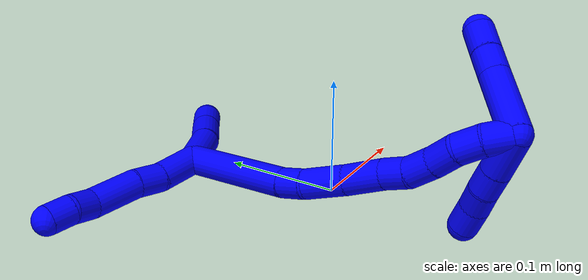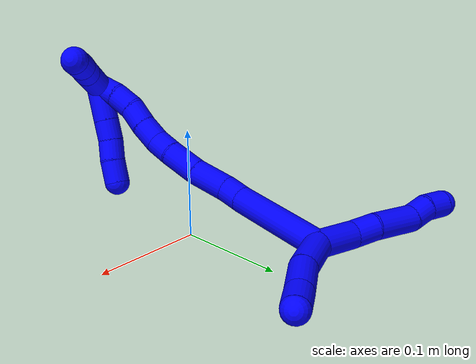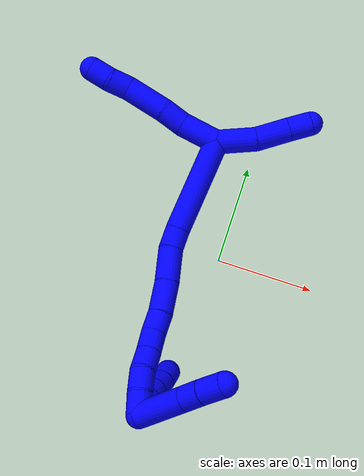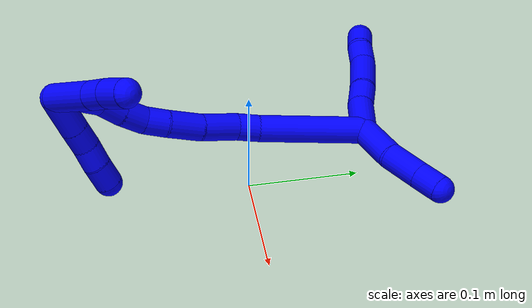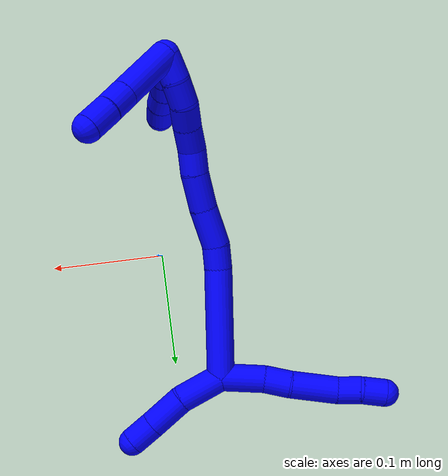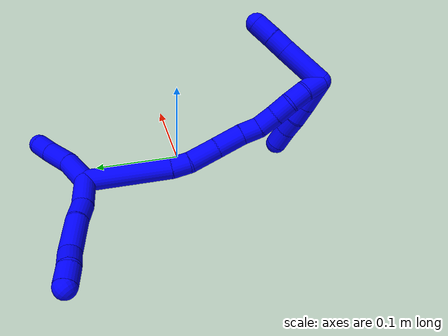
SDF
<sdf version="1.7">
 <world name="default">
  <model name="1">
   <static>0</static>
   <link name="1">
    <collision name="collision-cylinder-e_1_2_8">
     <pose>-0.012426 0.006484 -0.013899 -2.7051 -0.680944 2.02292</pose>
     <geometry><cylinder><radius>0.0125</radius><length>0.039478</length></cylinder></geometry>
     <surface>
      <friction><ode><mu>1.16</mu><mu2>1.16</mu2><slip1>0</slip1><slip2>0</slip2></ode></friction>
      <contact><ode><kp>1e+06</kp><kd>1</kd><max_vel>0</max_vel><min_depth>0.001</min_depth></ode></contact>
     </surface>
    </collision>
    <visual name="visual-cylinder-e_1_2_8">
     <pose>-0.012426 0.006484 -0.013899 -2.7051 -0.680944 2.02292</pose>
     <geometry><cylinder><radius>0.0125</radius><length>0.039478</length></cylinder></geometry>
     <material><ambient>0 0 1 1</ambient></material>
    </visual>
    <collision name="collision-cylinder-e_2_8_9">
     <pose>-0.034166 0.017015 -0.034356 -2.58868 -0.879548 2.05633</pose>
     <geometry><cylinder><radius>0.0125</radius><length>0.024177</length></cylinder></geometry>
     <surface>
      <friction><ode><mu>1.16</mu><mu2>1.16</mu2><slip1>0</slip1><slip2>0</slip2></ode></friction>
      <contact><ode><kp>1e+06</kp><kd>1</kd><max_vel>0</max_vel><min_depth>0.001</min_depth></ode></contact>
     </surface>
    </collision>
    <visual name="visual-cylinder-e_2_8_9">
     <pose>-0.034166 0.017015 -0.034356 -2.58868 -0.879548 2.05633</pose>
     <geometry><cylinder><radius>0.0125</radius><length>0.024177</length></cylinder></geometry>
     <material><ambient>0 0 1 1</ambient></material>
    </visual>
    <collision name="collision-cylinder-e_3_9_10">
     <pose>-0.057711 0.029332 -0.055064 -2.61272 -0.715034 1.88719</pose>
     <geometry><cylinder><radius>0.0125</radius><length>0.043412</length></cylinder></geometry>
     <surface>
      <friction><ode><mu>1.16</mu><mu2>1.16</mu2><slip1>0</slip1><slip2>0</slip2></ode></friction>
      <contact><ode><kp>1e+06</kp><kd>1</kd><max_vel>0</max_vel><min_depth>0.001</min_depth></ode></contact>
     </surface>
    </collision>
    <visual name="visual-cylinder-e_3_9_10">
     <pose>-0.057711 0.029332 -0.055064 -2.61272 -0.715034 1.88719</pose>
     <geometry><cylinder><radius>0.0125</radius><length>0.043412</length></cylinder></geometry>
     <material><ambient>0 0 1 1</ambient></material>
    </visual>
    <collision name="collision-cylinder-e_4_10_11">
     <pose>-0.080291 0.03873 -0.076037 -2.97764 -0.879046 2.79562</pose>
     <geometry><cylinder><radius>0.0125</radius><length>0.021681</length></cylinder></geometry>
     <surface>
      <friction><ode><mu>1.16</mu><mu2>1.16</mu2><slip1>0</slip1><slip2>0</slip2></ode></friction>
      <contact><ode><kp>1e+06</kp><kd>1</kd><max_vel>0</max_vel><min_depth>0.001</min_depth></ode></contact>
     </surface>
    </collision>
    <visual name="visual-cylinder-e_4_10_11">
     <pose>-0.080291 0.03873 -0.076037 -2.97764 -0.879046 2.79562</pose>
     <geometry><cylinder><radius>0.0125</radius><length>0.021681</length></cylinder></geometry>
     <material><ambient>0 0 1 1</ambient></material>
    </visual>
    <collision name="collision-cylinder-e_5_11_6">
     <pose>-0.095679 0.043736 -0.089811 -2.63281 -0.724077 1.93828</pose>
     <geometry><cylinder><radius>0.0125</radius><length>0.021252</length></cylinder></geometry>
     <surface>
      <friction><ode><mu>1.16</mu><mu2>1.16</mu2><slip1>0</slip1><slip2>0</slip2></ode></friction>
      <contact><ode><kp>1e+06</kp><kd>1</kd><max_vel>0</max_vel><min_depth>0.001</min_depth></ode></contact>
     </surface>
    </collision>
    <visual name="visual-cylinder-e_5_11_6">
     <pose>-0.095679 0.043736 -0.089811 -2.63281 -0.724077 1.93828</pose>
     <geometry><cylinder><radius>0.0125</radius><length>0.021252</length></cylinder></geometry>
     <material><ambient>0 0 1 1</ambient></material>
    </visual>
    <collision name="collision-cylinder-e_1_2_12">
     <pose>0.008932 0.00348 0.018039 -0.190579 0.452537 -0.044</pose>
     <geometry><cylinder><radius>0.0125</radius><length>0.040857</length></cylinder></geometry>
     <surface>
      <friction><ode><mu>1.16</mu><mu2>1.16</mu2><slip1>0</slip1><slip2>0</slip2></ode></friction>
      <contact><ode><kp>1e+06</kp><kd>1</kd><max_vel>0</max_vel><min_depth>0.001</min_depth></ode></contact>
     </surface>
    </collision>
    <visual name="visual-cylinder-e_1_2_12">
     <pose>0.008932 0.00348 0.018039 -0.190579 0.452537 -0.044</pose>
     <geometry><cylinder><radius>0.0125</radius><length>0.040857</length></cylinder></geometry>
     <material><ambient>0 0 1 1</ambient></material>
    </visual>
    <collision name="collision-cylinder-e_2_12_13">
     <pose>0.023378 0.013154 0.051556 -0.380665 0.319409 -0.062047</pose>
     <geometry><cylinder><radius>0.0125</radius><length>0.035117</length></cylinder></geometry>
     <surface>
      <friction><ode><mu>1.16</mu><mu2>1.16</mu2><slip1>0</slip1><slip2>0</slip2></ode></friction>
      <contact><ode><kp>1e+06</kp><kd>1</kd><max_vel>0</max_vel><min_depth>0.001</min_depth></ode></contact>
     </surface>
    </collision>
    <visual name="visual-cylinder-e_2_12_13">
     <pose>0.023378 0.013154 0.051556 -0.380665 0.319409 -0.062047</pose>
     <geometry><cylinder><radius>0.0125</radius><length>0.035117</length></cylinder></geometry>
     <material><ambient>0 0 1 1</ambient></material>
    </visual>
    <collision name="collision-cylinder-e_3_13_5">
     <pose>0.032476 0.023022 0.077894 -0.326198 0.302975 -0.050232</pose>
     <geometry><cylinder><radius>0.0125</radius><length>0.024027</length></cylinder></geometry>
     <surface>
      <friction><ode><mu>1.16</mu><mu2>1.16</mu2><slip1>0</slip1><slip2>0</slip2></ode></friction>
      <contact><ode><kp>1e+06</kp><kd>1</kd><max_vel>0</max_vel><min_depth>0.001</min_depth></ode></contact>
     </surface>
    </collision>
    <visual name="visual-cylinder-e_3_13_5">
     <pose>0.032476 0.023022 0.077894 -0.326198 0.302975 -0.050232</pose>
     <geometry><cylinder><radius>0.0125</radius><length>0.024027</length></cylinder></geometry>
     <material><ambient>0 0 1 1</ambient></material>
    </visual>
    <collision name="collision-cylinder-e_1_2_14">
     <pose>0.014229 -0.039846 -0.02563 2.1424 0.29177 0.525947</pose>
     <geometry><cylinder><radius>0.0125</radius><length>0.098935</length></cylinder></geometry>
     <surface>
      <friction><ode><mu>1.16</mu><mu2>1.16</mu2><slip1>0</slip1><slip2>0</slip2></ode></friction>
      <contact><ode><kp>1e+06</kp><kd>1</kd><max_vel>0</max_vel><min_depth>0.001</min_depth></ode></contact>
     </surface>
    </collision>
    <visual name="visual-cylinder-e_1_2_14">
     <pose>0.014229 -0.039846 -0.02563 2.1424 0.29177 0.525947</pose>
     <geometry><cylinder><radius>0.0125</radius><length>0.098935</length></cylinder></geometry>
     <material><ambient>0 0 1 1</ambient></material>
    </visual>
    <collision name="collision-cylinder-e_2_14_15">
     <pose>0.030984 -0.089162 -0.055471 1.98926 0.238986 0.365474</pose>
     <geometry><cylinder><radius>0.0125</radius><length>0.021337</length></cylinder></geometry>
     <surface>
      <friction><ode><mu>1.16</mu><mu2>1.16</mu2><slip1>0</slip1><slip2>0</slip2></ode></friction>
      <contact><ode><kp>1e+06</kp><kd>1</kd><max_vel>0</max_vel><min_depth>0.001</min_depth></ode></contact>
     </surface>
    </collision>
    <visual name="visual-cylinder-e_2_14_15">
     <pose>0.030984 -0.089162 -0.055471 1.98926 0.238986 0.365474</pose>
     <geometry><cylinder><radius>0.0125</radius><length>0.021337</length></cylinder></geometry>
     <material><ambient>0 0 1 1</ambient></material>
    </visual>
    <collision name="collision-cylinder-e_3_15_16">
     <pose>0.039253 -0.115187 -0.06298 1.76739 0.32799 0.398039</pose>
     <geometry><cylinder><radius>0.0125</radius><length>0.035659</length></cylinder></geometry>
     <surface>
      <friction><ode><mu>1.16</mu><mu2>1.16</mu2><slip1>0</slip1><slip2>0</slip2></ode></friction>
      <contact><ode><kp>1e+06</kp><kd>1</kd><max_vel>0</max_vel><min_depth>0.001</min_depth></ode></contact>
     </surface>
    </collision>
    <visual name="visual-cylinder-e_3_15_16">
     <pose>0.039253 -0.115187 -0.06298 1.76739 0.32799 0.398039</pose>
     <geometry><cylinder><radius>0.0125</radius><length>0.035659</length></cylinder></geometry>
     <material><ambient>0 0 1 1</ambient></material>
    </visual>
    <collision name="collision-cylinder-e_4_16_17">
     <pose>0.048383 -0.147668 -0.069784 1.78748 0.204755 0.254248</pose>
     <geometry><cylinder><radius>0.0125</radius><length>0.033312</length></cylinder></geometry>
     <surface>
      <friction><ode><mu>1.16</mu><mu2>1.16</mu2><slip1>0</slip1><slip2>0</slip2></ode></friction>
      <contact><ode><kp>1e+06</kp><kd>1</kd><max_vel>0</max_vel><min_depth>0.001</min_depth></ode></contact>
     </surface>
    </collision>
    <visual name="visual-cylinder-e_4_16_17">
     <pose>0.048383 -0.147668 -0.069784 1.78748 0.204755 0.254248</pose>
     <geometry><cylinder><radius>0.0125</radius><length>0.033312</length></cylinder></geometry>
     <material><ambient>0 0 1 1</ambient></material>
    </visual>
    <collision name="collision-cylinder-e_5_17_18">
     <pose>0.053559 -0.173601 -0.076866 1.91401 0.166827 0.236222</pose>
     <geometry><cylinder><radius>0.0125</radius><length>0.02155</length></cylinder></geometry>
     <surface>
      <friction><ode><mu>1.16</mu><mu2>1.16</mu2><slip1>0</slip1><slip2>0</slip2></ode></friction>
      <contact><ode><kp>1e+06</kp><kd>1</kd><max_vel>0</max_vel><min_depth>0.001</min_depth></ode></contact>
     </surface>
    </collision>
    <visual name="visual-cylinder-e_5_17_18">
     <pose>0.053559 -0.173601 -0.076866 1.91401 0.166827 0.236222</pose>
     <geometry><cylinder><radius>0.0125</radius><length>0.02155</length></cylinder></geometry>
     <material><ambient>0 0 1 1</ambient></material>
    </visual>
    <collision name="collision-cylinder-e_6_18_19">
     <pose>0.05521 -0.194988 -0.081644 1.67608 -0.012127 -0.013476</pose>
     <geometry><cylinder><radius>0.0125</radius><length>0.022891</length></cylinder></geometry>
     <surface>
      <friction><ode><mu>1.16</mu><mu2>1.16</mu2><slip1>0</slip1><slip2>0</slip2></ode></friction>
      <contact><ode><kp>1e+06</kp><kd>1</kd><max_vel>0</max_vel><min_depth>0.001</min_depth></ode></contact>
     </surface>
    </collision>
    <visual name="visual-cylinder-e_6_18_19">
     <pose>0.05521 -0.194988 -0.081644 1.67608 -0.012127 -0.013476</pose>
     <geometry><cylinder><radius>0.0125</radius><length>0.022891</length></cylinder></geometry>
     <material><ambient>0 0 1 1</ambient></material>
    </visual>
    <collision name="collision-cylinder-e_7_19_20">
     <pose>0.05368 -0.217306 -0.083715 1.65002 -0.1261 -0.136477</pose>
     <geometry><cylinder><radius>0.0125</radius><length>0.022117</length></cylinder></geometry>
     <surface>
      <friction><ode><mu>1.16</mu><mu2>1.16</mu2><slip1>0</slip1><slip2>0</slip2></ode></friction>
      <contact><ode><kp>1e+06</kp><kd>1</kd><max_vel>0</max_vel><min_depth>0.001</min_depth></ode></contact>
     </surface>
    </collision>
    <visual name="visual-cylinder-e_7_19_20">
     <pose>0.05368 -0.217306 -0.083715 1.65002 -0.1261 -0.136477</pose>
     <geometry><cylinder><radius>0.0125</radius><length>0.022117</length></cylinder></geometry>
     <material><ambient>0 0 1 1</ambient></material>
    </visual>
    <collision name="collision-cylinder-e_8_20_21">
     <pose>0.053909 -0.238895 -0.085261 1.63432 0.150591 0.160433</pose>
     <geometry><cylinder><radius>0.0125</radius><length>0.021592</length></cylinder></geometry>
     <surface>
      <friction><ode><mu>1.16</mu><mu2>1.16</mu2><slip1>0</slip1><slip2>0</slip2></ode></friction>
      <contact><ode><kp>1e+06</kp><kd>1</kd><max_vel>0</max_vel><min_depth>0.001</min_depth></ode></contact>
     </surface>
    </collision>
    <visual name="visual-cylinder-e_8_20_21">
     <pose>0.053909 -0.238895 -0.085261 1.63432 0.150591 0.160433</pose>
     <geometry><cylinder><radius>0.0125</radius><length>0.021592</length></cylinder></geometry>
     <material><ambient>0 0 1 1</ambient></material>
    </visual>
    <collision name="collision-cylinder-e_9_21_1">
     <pose>0.059217 -0.260165 -0.087123 1.68186 0.332475 0.370768</pose>
     <geometry><cylinder><radius>0.0125</radius><length>0.022606</length></cylinder></geometry>
     <surface>
      <friction><ode><mu>1.16</mu><mu2>1.16</mu2><slip1>0</slip1><slip2>0</slip2></ode></friction>
      <contact><ode><kp>1e+06</kp><kd>1</kd><max_vel>0</max_vel><min_depth>0.001</min_depth></ode></contact>
     </surface>
    </collision>
    <visual name="visual-cylinder-e_9_21_1">
     <pose>0.059217 -0.260165 -0.087123 1.68186 0.332475 0.370768</pose>
     <geometry><cylinder><radius>0.0125</radius><length>0.022606</length></cylinder></geometry>
     <material><ambient>0 0 1 1</ambient></material>
    </visual>
    <collision name="collision-cylinder-e_1_1_22">
     <pose>0.072305 -0.255799 -0.090681 -1.72793 0.554666 -0.643481</pose>
     <geometry><cylinder><radius>0.0125</radius><length>0.035692</length></cylinder></geometry>
     <surface>
      <friction><ode><mu>1.16</mu><mu2>1.16</mu2><slip1>0</slip1><slip2>0</slip2></ode></friction>
      <contact><ode><kp>1e+06</kp><kd>1</kd><max_vel>0</max_vel><min_depth>0.001</min_depth></ode></contact>
     </surface>
    </collision>
    <visual name="visual-cylinder-e_1_1_22">
     <pose>0.072305 -0.255799 -0.090681 -1.72793 0.554666 -0.643481</pose>
     <geometry><cylinder><radius>0.0125</radius><length>0.035692</length></cylinder></geometry>
     <material><ambient>0 0 1 1</ambient></material>
    </visual>
    <collision name="collision-cylinder-e_2_22_23">
     <pose>0.087101 -0.231978 -0.094212 -1.70103 0.544435 -0.615945</pose>
     <geometry><cylinder><radius>0.0125</radius><length>0.020838</length></cylinder></geometry>
     <surface>
      <friction><ode><mu>1.16</mu><mu2>1.16</mu2><slip1>0</slip1><slip2>0</slip2></ode></friction>
      <contact><ode><kp>1e+06</kp><kd>1</kd><max_vel>0</max_vel><min_depth>0.001</min_depth></ode></contact>
     </surface>
    </collision>
    <visual name="visual-cylinder-e_2_22_23">
     <pose>0.087101 -0.231978 -0.094212 -1.70103 0.544435 -0.615945</pose>
     <geometry><cylinder><radius>0.0125</radius><length>0.020838</length></cylinder></geometry>
     <material><ambient>0 0 1 1</ambient></material>
    </visual>
    <collision name="collision-cylinder-e_3_23_24">
     <pose>0.098742 -0.214962 -0.095567 -1.59488 0.651982 -0.666736</pose>
     <geometry><cylinder><radius>0.0125</radius><length>0.020587</length></cylinder></geometry>
     <surface>
      <friction><ode><mu>1.16</mu><mu2>1.16</mu2><slip1>0</slip1><slip2>0</slip2></ode></friction>
      <contact><ode><kp>1e+06</kp><kd>1</kd><max_vel>0</max_vel><min_depth>0.001</min_depth></ode></contact>
     </surface>
    </collision>
    <visual name="visual-cylinder-e_3_23_24">
     <pose>0.098742 -0.214962 -0.095567 -1.59488 0.651982 -0.666736</pose>
     <geometry><cylinder><radius>0.0125</radius><length>0.020587</length></cylinder></geometry>
     <material><ambient>0 0 1 1</ambient></material>
    </visual>
    <collision name="collision-cylinder-e_4_24_4">
     <pose>0.111029 -0.197125 -0.096836 -1.68139 0.556249 -0.617567</pose>
     <geometry><cylinder><radius>0.0125</radius><length>0.022883</length></cylinder></geometry>
     <surface>
      <friction><ode><mu>1.16</mu><mu2>1.16</mu2><slip1>0</slip1><slip2>0</slip2></ode></friction>
      <contact><ode><kp>1e+06</kp><kd>1</kd><max_vel>0</max_vel><min_depth>0.001</min_depth></ode></contact>
     </surface>
    </collision>
    <visual name="visual-cylinder-e_4_24_4">
     <pose>0.111029 -0.197125 -0.096836 -1.68139 0.556249 -0.617567</pose>
     <geometry><cylinder><radius>0.0125</radius><length>0.022883</length></cylinder></geometry>
     <material><ambient>0 0 1 1</ambient></material>
    </visual>
    <collision name="collision-cylinder-e_1_1_25">
     <pose>0.05849 -0.269211 -0.0615 -0.058564 -0.163002 0.004785</pose>
     <geometry><cylinder><radius>0.0125</radius><length>0.054428</length></cylinder></geometry>
     <surface>
      <friction><ode><mu>1.16</mu><mu2>1.16</mu2><slip1>0</slip1><slip2>0</slip2></ode></friction>
      <contact><ode><kp>1e+06</kp><kd>1</kd><max_vel>0</max_vel><min_depth>0.001</min_depth></ode></contact>
     </surface>
    </collision>
    <visual name="visual-cylinder-e_1_1_25">
     <pose>0.05849 -0.269211 -0.0615 -0.058564 -0.163002 0.004785</pose>
     <geometry><cylinder><radius>0.0125</radius><length>0.054428</length></cylinder></geometry>
     <material><ambient>0 0 1 1</ambient></material>
    </visual>
    <collision name="collision-cylinder-e_2_25_26">
     <pose>0.052088 -0.267221 -0.024387 -0.040579 -0.190236 0.003872</pose>
     <geometry><cylinder><radius>0.0125</radius><length>0.021006</length></cylinder></geometry>
     <surface>
      <friction><ode><mu>1.16</mu><mu2>1.16</mu2><slip1>0</slip1><slip2>0</slip2></ode></friction>
      <contact><ode><kp>1e+06</kp><kd>1</kd><max_vel>0</max_vel><min_depth>0.001</min_depth></ode></contact>
     </surface>
    </collision>
    <visual name="visual-cylinder-e_2_25_26">
     <pose>0.052088 -0.267221 -0.024387 -0.040579 -0.190236 0.003872</pose>
     <geometry><cylinder><radius>0.0125</radius><length>0.021006</length></cylinder></geometry>
     <material><ambient>0 0 1 1</ambient></material>
    </visual>
    <collision name="collision-cylinder-e_3_26_3">
     <pose>0.048603 -0.266118 -0.00191 -0.056198 -0.122297 0.003442</pose>
     <geometry><cylinder><radius>0.0125</radius><length>0.024566</length></cylinder></geometry>
     <surface>
      <friction><ode><mu>1.16</mu><mu2>1.16</mu2><slip1>0</slip1><slip2>0</slip2></ode></friction>
      <contact><ode><kp>1e+06</kp><kd>1</kd><max_vel>0</max_vel><min_depth>0.001</min_depth></ode></contact>
     </surface>
    </collision>
    <visual name="visual-cylinder-e_3_26_3">
     <pose>0.048603 -0.266118 -0.00191 -0.056198 -0.122297 0.003442</pose>
     <geometry><cylinder><radius>0.0125</radius><length>0.024566</length></cylinder></geometry>
     <material><ambient>0 0 1 1</ambient></material>
    </visual>
    <collision name="collision-sphere-3">
     <pose>0.047105 -0.265433 0.010262 0 -0 0</pose>
     <geometry><sphere><radius>0.0125</radius></sphere></geometry>
     <surface>
      <friction><ode><mu>1.16</mu><mu2>1.16</mu2><slip1>0</slip1><slip2>0</slip2></ode></friction>
      <contact><ode><kp>1e+06</kp><kd>1</kd><max_vel>0</max_vel><min_depth>0.001</min_depth></ode></contact>
     </surface>
    </collision>
    <visual name="visual-sphere-3">
     <pose>0.047105 -0.265433 0.010262 0 -0 0</pose>
     <geometry><sphere><radius>0.0125</radius></sphere></geometry>
     <material><ambient>0 0 1 1</ambient></material>
    </visual>
    <collision name="collision-sphere-26">
     <pose>0.050102 -0.266803 -0.014082 0 -0 0</pose>
     <geometry><sphere><radius>0.0125</radius></sphere></geometry>
     <surface>
      <friction><ode><mu>1.16</mu><mu2>1.16</mu2><slip1>0</slip1><slip2>0</slip2></ode></friction>
      <contact><ode><kp>1e+06</kp><kd>1</kd><max_vel>0</max_vel><min_depth>0.001</min_depth></ode></contact>
     </surface>
    </collision>
    <visual name="visual-sphere-26">
     <pose>0.050102 -0.266803 -0.014082 0 -0 0</pose>
     <geometry><sphere><radius>0.0125</radius></sphere></geometry>
     <material><ambient>0 0 1 1</ambient></material>
    </visual>
    <collision name="collision-sphere-25">
     <pose>0.054074 -0.267639 -0.034692 0 -0 0</pose>
     <geometry><sphere><radius>0.0125</radius></sphere></geometry>
     <surface>
      <friction><ode><mu>1.16</mu><mu2>1.16</mu2><slip1>0</slip1><slip2>0</slip2></ode></friction>
      <contact><ode><kp>1e+06</kp><kd>1</kd><max_vel>0</max_vel><min_depth>0.001</min_depth></ode></contact>
     </surface>
    </collision>
    <visual name="visual-sphere-25">
     <pose>0.054074 -0.267639 -0.034692 0 -0 0</pose>
     <geometry><sphere><radius>0.0125</radius></sphere></geometry>
     <material><ambient>0 0 1 1</ambient></material>
    </visual>
    <collision name="collision-sphere-4">
     <pose>0.11707 -0.187468 -0.097909 0 -0 0</pose>
     <geometry><sphere><radius>0.0125</radius></sphere></geometry>
     <surface>
      <friction><ode><mu>1.16</mu><mu2>1.16</mu2><slip1>0</slip1><slip2>0</slip2></ode></friction>
      <contact><ode><kp>1e+06</kp><kd>1</kd><max_vel>0</max_vel><min_depth>0.001</min_depth></ode></contact>
     </surface>
    </collision>
    <visual name="visual-sphere-4">
     <pose>0.11707 -0.187468 -0.097909 0 -0 0</pose>
     <geometry><sphere><radius>0.0125</radius></sphere></geometry>
     <material><ambient>0 0 1 1</ambient></material>
    </visual>
    <collision name="collision-sphere-24">
     <pose>0.104988 -0.206782 -0.095764 0 -0 0</pose>
     <geometry><sphere><radius>0.0125</radius></sphere></geometry>
     <surface>
      <friction><ode><mu>1.16</mu><mu2>1.16</mu2><slip1>0</slip1><slip2>0</slip2></ode></friction>
      <contact><ode><kp>1e+06</kp><kd>1</kd><max_vel>0</max_vel><min_depth>0.001</min_depth></ode></contact>
     </surface>
    </collision>
    <visual name="visual-sphere-24">
     <pose>0.104988 -0.206782 -0.095764 0 -0 0</pose>
     <geometry><sphere><radius>0.0125</radius></sphere></geometry>
     <material><ambient>0 0 1 1</ambient></material>
    </visual>
    <collision name="collision-sphere-23">
     <pose>0.092497 -0.223141 -0.09537 0 -0 0</pose>
     <geometry><sphere><radius>0.0125</radius></sphere></geometry>
     <surface>
      <friction><ode><mu>1.16</mu><mu2>1.16</mu2><slip1>0</slip1><slip2>0</slip2></ode></friction>
      <contact><ode><kp>1e+06</kp><kd>1</kd><max_vel>0</max_vel><min_depth>0.001</min_depth></ode></contact>
     </surface>
    </collision>
    <visual name="visual-sphere-23">
     <pose>0.092497 -0.223141 -0.09537 0 -0 0</pose>
     <geometry><sphere><radius>0.0125</radius></sphere></geometry>
     <material><ambient>0 0 1 1</ambient></material>
    </visual>
    <collision name="collision-sphere-22">
     <pose>0.081704 -0.240815 -0.093055 0 -0 0</pose>
     <geometry><sphere><radius>0.0125</radius></sphere></geometry>
     <surface>
      <friction><ode><mu>1.16</mu><mu2>1.16</mu2><slip1>0</slip1><slip2>0</slip2></ode></friction>
      <contact><ode><kp>1e+06</kp><kd>1</kd><max_vel>0</max_vel><min_depth>0.001</min_depth></ode></contact>
     </surface>
    </collision>
    <visual name="visual-sphere-22">
     <pose>0.081704 -0.240815 -0.093055 0 -0 0</pose>
     <geometry><sphere><radius>0.0125</radius></sphere></geometry>
     <material><ambient>0 0 1 1</ambient></material>
    </visual>
    <collision name="collision-sphere-1">
     <pose>0.062906 -0.270783 -0.088307 0 -0 0</pose>
     <geometry><sphere><radius>0.0125</radius></sphere></geometry>
     <surface>
      <friction><ode><mu>1.16</mu><mu2>1.16</mu2><slip1>0</slip1><slip2>0</slip2></ode></friction>
      <contact><ode><kp>1e+06</kp><kd>1</kd><max_vel>0</max_vel><min_depth>0.001</min_depth></ode></contact>
     </surface>
    </collision>
    <visual name="visual-sphere-1">
     <pose>0.062906 -0.270783 -0.088307 0 -0 0</pose>
     <geometry><sphere><radius>0.0125</radius></sphere></geometry>
     <material><ambient>0 0 1 1</ambient></material>
    </visual>
    <collision name="collision-sphere-21">
     <pose>0.055528 -0.249547 -0.085938 0 -0 0</pose>
     <geometry><sphere><radius>0.0125</radius></sphere></geometry>
     <surface>
      <friction><ode><mu>1.16</mu><mu2>1.16</mu2><slip1>0</slip1><slip2>0</slip2></ode></friction>
      <contact><ode><kp>1e+06</kp><kd>1</kd><max_vel>0</max_vel><min_depth>0.001</min_depth></ode></contact>
     </surface>
    </collision>
    <visual name="visual-sphere-21">
     <pose>0.055528 -0.249547 -0.085938 0 -0 0</pose>
     <geometry><sphere><radius>0.0125</radius></sphere></geometry>
     <material><ambient>0 0 1 1</ambient></material>
    </visual>
    <collision name="collision-sphere-6">
     <pose>-0.102718 0.047613 -0.096763 0 -0 0</pose>
     <geometry><sphere><radius>0.0125</radius></sphere></geometry>
     <surface>
      <friction><ode><mu>1.16</mu><mu2>1.16</mu2><slip1>0</slip1><slip2>0</slip2></ode></friction>
      <contact><ode><kp>1e+06</kp><kd>1</kd><max_vel>0</max_vel><min_depth>0.001</min_depth></ode></contact>
     </surface>
    </collision>
    <visual name="visual-sphere-6">
     <pose>-0.102718 0.047613 -0.096763 0 -0 0</pose>
     <geometry><sphere><radius>0.0125</radius></sphere></geometry>
     <material><ambient>0 0 1 1</ambient></material>
    </visual>
    <collision name="collision-sphere-11">
     <pose>-0.08864 0.039858 -0.082859 0 -0 0</pose>
     <geometry><sphere><radius>0.0125</radius></sphere></geometry>
     <surface>
      <friction><ode><mu>1.16</mu><mu2>1.16</mu2><slip1>0</slip1><slip2>0</slip2></ode></friction>
      <contact><ode><kp>1e+06</kp><kd>1</kd><max_vel>0</max_vel><min_depth>0.001</min_depth></ode></contact>
     </surface>
    </collision>
    <visual name="visual-sphere-11">
     <pose>-0.08864 0.039858 -0.082859 0 -0 0</pose>
     <geometry><sphere><radius>0.0125</radius></sphere></geometry>
     <material><ambient>0 0 1 1</ambient></material>
    </visual>
    <collision name="collision-sphere-10">
     <pose>-0.071942 0.037601 -0.069215 0 -0 0</pose>
     <geometry><sphere><radius>0.0125</radius></sphere></geometry>
     <surface>
      <friction><ode><mu>1.16</mu><mu2>1.16</mu2><slip1>0</slip1><slip2>0</slip2></ode></friction>
      <contact><ode><kp>1e+06</kp><kd>1</kd><max_vel>0</max_vel><min_depth>0.001</min_depth></ode></contact>
     </surface>
    </collision>
    <visual name="visual-sphere-10">
     <pose>-0.071942 0.037601 -0.069215 0 -0 0</pose>
     <geometry><sphere><radius>0.0125</radius></sphere></geometry>
     <material><ambient>0 0 1 1</ambient></material>
    </visual>
    <collision name="collision-sphere-9">
     <pose>-0.04348 0.021062 -0.040914 0 -0 0</pose>
     <geometry><sphere><radius>0.0125</radius></sphere></geometry>
     <surface>
      <friction><ode><mu>1.16</mu><mu2>1.16</mu2><slip1>0</slip1><slip2>0</slip2></ode></friction>
      <contact><ode><kp>1e+06</kp><kd>1</kd><max_vel>0</max_vel><min_depth>0.001</min_depth></ode></contact>
     </surface>
    </collision>
    <visual name="visual-sphere-9">
     <pose>-0.04348 0.021062 -0.040914 0 -0 0</pose>
     <geometry><sphere><radius>0.0125</radius></sphere></geometry>
     <material><ambient>0 0 1 1</ambient></material>
    </visual>
    <collision name="collision-sphere-2">
     <geometry><sphere><radius>0.0125</radius></sphere></geometry>
     <surface>
      <friction><ode><mu>1.16</mu><mu2>1.16</mu2><slip1>0</slip1><slip2>0</slip2></ode></friction>
      <contact><ode><kp>1e+06</kp><kd>1</kd><max_vel>0</max_vel><min_depth>0.001</min_depth></ode></contact>
     </surface>
    </collision>
    <visual name="visual-sphere-2">
     <geometry><sphere><radius>0.0125</radius></sphere></geometry>
     <material><ambient>0 0 1 1</ambient></material>
    </visual>
    <collision name="collision-sphere-19">
     <pose>0.055071 -0.206369 -0.082847 0 -0 0</pose>
     <geometry><sphere><radius>0.0125</radius></sphere></geometry>
     <surface>
      <friction><ode><mu>1.16</mu><mu2>1.16</mu2><slip1>0</slip1><slip2>0</slip2></ode></friction>
      <contact><ode><kp>1e+06</kp><kd>1</kd><max_vel>0</max_vel><min_depth>0.001</min_depth></ode></contact>
     </surface>
    </collision>
    <visual name="visual-sphere-19">
     <pose>0.055071 -0.206369 -0.082847 0 -0 0</pose>
     <geometry><sphere><radius>0.0125</radius></sphere></geometry>
     <material><ambient>0 0 1 1</ambient></material>
    </visual>
    <collision name="collision-sphere-8">
     <pose>-0.024853 0.012968 -0.027798 0 -0 0</pose>
     <geometry><sphere><radius>0.0125</radius></sphere></geometry>
     <surface>
      <friction><ode><mu>1.16</mu><mu2>1.16</mu2><slip1>0</slip1><slip2>0</slip2></ode></friction>
      <contact><ode><kp>1e+06</kp><kd>1</kd><max_vel>0</max_vel><min_depth>0.001</min_depth></ode></contact>
     </surface>
    </collision>
    <visual name="visual-sphere-8">
     <pose>-0.024853 0.012968 -0.027798 0 -0 0</pose>
     <geometry><sphere><radius>0.0125</radius></sphere></geometry>
     <material><ambient>0 0 1 1</ambient></material>
    </visual>
    <collision name="collision-sphere-12">
     <pose>0.017864 0.00696 0.036079 0 -0 0</pose>
     <geometry><sphere><radius>0.0125</radius></sphere></geometry>
     <surface>
      <friction><ode><mu>1.16</mu><mu2>1.16</mu2><slip1>0</slip1><slip2>0</slip2></ode></friction>
      <contact><ode><kp>1e+06</kp><kd>1</kd><max_vel>0</max_vel><min_depth>0.001</min_depth></ode></contact>
     </surface>
    </collision>
    <visual name="visual-sphere-12">
     <pose>0.017864 0.00696 0.036079 0 -0 0</pose>
     <geometry><sphere><radius>0.0125</radius></sphere></geometry>
     <material><ambient>0 0 1 1</ambient></material>
    </visual>
    <collision name="collision-sphere-13">
     <pose>0.028891 0.019348 0.067033 0 -0 0</pose>
     <geometry><sphere><radius>0.0125</radius></sphere></geometry>
     <surface>
      <friction><ode><mu>1.16</mu><mu2>1.16</mu2><slip1>0</slip1><slip2>0</slip2></ode></friction>
      <contact><ode><kp>1e+06</kp><kd>1</kd><max_vel>0</max_vel><min_depth>0.001</min_depth></ode></contact>
     </surface>
    </collision>
    <visual name="visual-sphere-13">
     <pose>0.028891 0.019348 0.067033 0 -0 0</pose>
     <geometry><sphere><radius>0.0125</radius></sphere></geometry>
     <material><ambient>0 0 1 1</ambient></material>
    </visual>
    <collision name="collision-sphere-5">
     <pose>0.03606 0.026696 0.088756 0 -0 0</pose>
     <geometry><sphere><radius>0.0125</radius></sphere></geometry>
     <surface>
      <friction><ode><mu>1.16</mu><mu2>1.16</mu2><slip1>0</slip1><slip2>0</slip2></ode></friction>
      <contact><ode><kp>1e+06</kp><kd>1</kd><max_vel>0</max_vel><min_depth>0.001</min_depth></ode></contact>
     </surface>
    </collision>
    <visual name="visual-sphere-5">
     <pose>0.03606 0.026696 0.088756 0 -0 0</pose>
     <geometry><sphere><radius>0.0125</radius></sphere></geometry>
     <material><ambient>0 0 1 1</ambient></material>
    </visual>
    <collision name="collision-sphere-14">
     <pose>0.028458 -0.079691 -0.051259 0 -0 0</pose>
     <geometry><sphere><radius>0.0125</radius></sphere></geometry>
     <surface>
      <friction><ode><mu>1.16</mu><mu2>1.16</mu2><slip1>0</slip1><slip2>0</slip2></ode></friction>
      <contact><ode><kp>1e+06</kp><kd>1</kd><max_vel>0</max_vel><min_depth>0.001</min_depth></ode></contact>
     </surface>
    </collision>
    <visual name="visual-sphere-14">
     <pose>0.028458 -0.079691 -0.051259 0 -0 0</pose>
     <geometry><sphere><radius>0.0125</radius></sphere></geometry>
     <material><ambient>0 0 1 1</ambient></material>
    </visual>
    <collision name="collision-sphere-15">
     <pose>0.033509 -0.098633 -0.059683 0 -0 0</pose>
     <geometry><sphere><radius>0.0125</radius></sphere></geometry>
     <surface>
      <friction><ode><mu>1.16</mu><mu2>1.16</mu2><slip1>0</slip1><slip2>0</slip2></ode></friction>
      <contact><ode><kp>1e+06</kp><kd>1</kd><max_vel>0</max_vel><min_depth>0.001</min_depth></ode></contact>
     </surface>
    </collision>
    <visual name="visual-sphere-15">
     <pose>0.033509 -0.098633 -0.059683 0 -0 0</pose>
     <geometry><sphere><radius>0.0125</radius></sphere></geometry>
     <material><ambient>0 0 1 1</ambient></material>
    </visual>
    <collision name="collision-sphere-16">
     <pose>0.044996 -0.131741 -0.066277 0 -0 0</pose>
     <geometry><sphere><radius>0.0125</radius></sphere></geometry>
     <surface>
      <friction><ode><mu>1.16</mu><mu2>1.16</mu2><slip1>0</slip1><slip2>0</slip2></ode></friction>
      <contact><ode><kp>1e+06</kp><kd>1</kd><max_vel>0</max_vel><min_depth>0.001</min_depth></ode></contact>
     </surface>
    </collision>
    <visual name="visual-sphere-16">
     <pose>0.044996 -0.131741 -0.066277 0 -0 0</pose>
     <geometry><sphere><radius>0.0125</radius></sphere></geometry>
     <material><ambient>0 0 1 1</ambient></material>
    </visual>
    <collision name="collision-sphere-17">
     <pose>0.05177 -0.163595 -0.07329 0 -0 0</pose>
     <geometry><sphere><radius>0.0125</radius></sphere></geometry>
     <surface>
      <friction><ode><mu>1.16</mu><mu2>1.16</mu2><slip1>0</slip1><slip2>0</slip2></ode></friction>
      <contact><ode><kp>1e+06</kp><kd>1</kd><max_vel>0</max_vel><min_depth>0.001</min_depth></ode></contact>
     </surface>
    </collision>
    <visual name="visual-sphere-17">
     <pose>0.05177 -0.163595 -0.07329 0 -0 0</pose>
     <geometry><sphere><radius>0.0125</radius></sphere></geometry>
     <material><ambient>0 0 1 1</ambient></material>
    </visual>
    <collision name="collision-sphere-18">
     <pose>0.055348 -0.183607 -0.080441 0 -0 0</pose>
     <geometry><sphere><radius>0.0125</radius></sphere></geometry>
     <surface>
      <friction><ode><mu>1.16</mu><mu2>1.16</mu2><slip1>0</slip1><slip2>0</slip2></ode></friction>
      <contact><ode><kp>1e+06</kp><kd>1</kd><max_vel>0</max_vel><min_depth>0.001</min_depth></ode></contact>
     </surface>
    </collision>
    <visual name="visual-sphere-18">
     <pose>0.055348 -0.183607 -0.080441 0 -0 0</pose>
     <geometry><sphere><radius>0.0125</radius></sphere></geometry>
     <material><ambient>0 0 1 1</ambient></material>
    </visual>
    <collision name="collision-sphere-20">
     <pose>0.052289 -0.228242 -0.084583 0 -0 0</pose>
     <geometry><sphere><radius>0.0125</radius></sphere></geometry>
     <surface>
      <friction><ode><mu>1.16</mu><mu2>1.16</mu2><slip1>0</slip1><slip2>0</slip2></ode></friction>
      <contact><ode><kp>1e+06</kp><kd>1</kd><max_vel>0</max_vel><min_depth>0.001</min_depth></ode></contact>
     </surface>
    </collision>
    <visual name="visual-sphere-20">
     <pose>0.052289 -0.228242 -0.084583 0 -0 0</pose>
     <geometry><sphere><radius>0.0125</radius></sphere></geometry>
     <material><ambient>0 0 1 1</ambient></material>
    </visual>
    <inertial>
     <pose>0.026666 -0.111677 -0.0449 0 -0 0</pose>
     <mass>0.75</mass>
     <inertia><ixx>0.000177</ixx><ixy>0</ixy><ixz>0</ixz><iyy>6.2e-05</iyy><iyz>0</iyz><izz>4.4e-05</izz></inertia>
    </inertial>
   </link>
   <pose>-0.039755 0.11556 0.016034 -0.973212 0.737098 -0.58342</pose>
  </model>
 </world>
</sdf>
